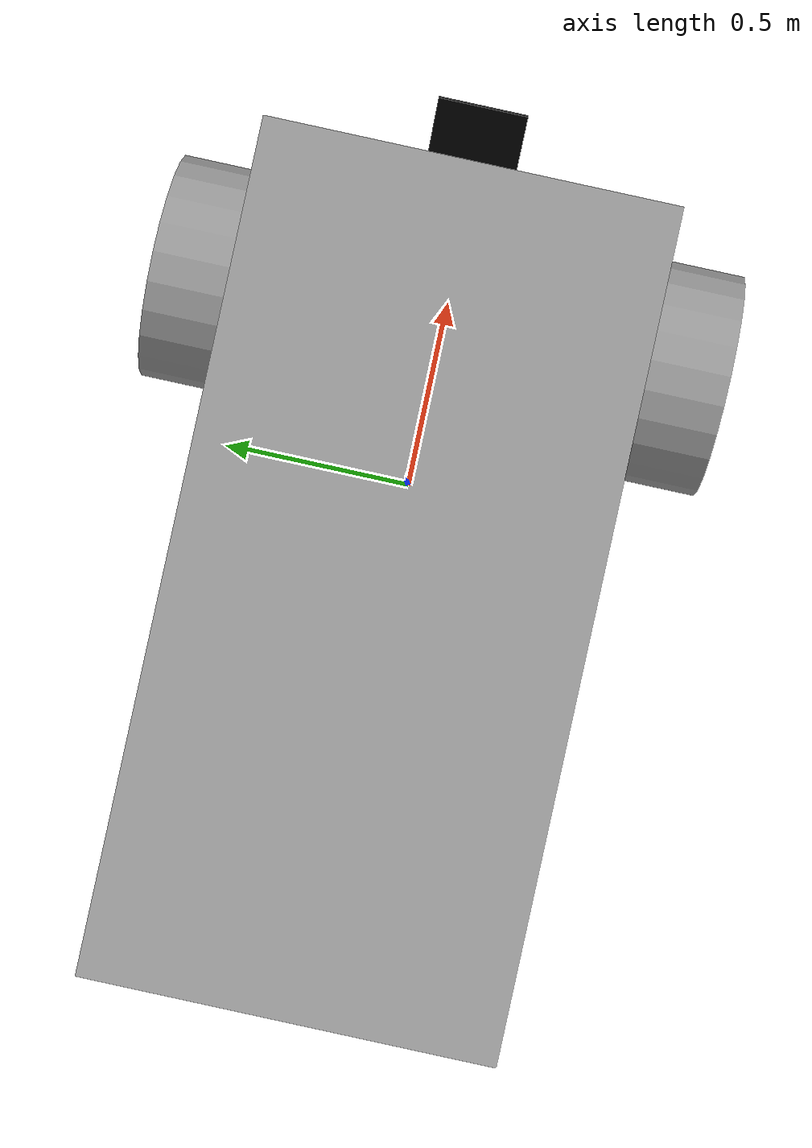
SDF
<?xml version='1.0'?>
<sdf version='1.6'>
  <model name='hummingbot'>
    <link name='main_box'>
      <inertial>
        <mass>2.04447</mass>
        <inertia>
          <ixx>0.340745</ixx>
          <ixy>0</ixy>
          <ixz>0</ixz>
          <iyy>0.882505</iyy>
          <iyz>0</iyz>
          <izz>0.882505</izz>
        </inertia>
        <pose frame=''>0 0 0 0 -0 0</pose>
      </inertial>
      <pose frame=''>-0.285955 -0.002958 0.4 0 -0 0</pose>
      <gravity>1</gravity>
      <self_collide>0</self_collide>
      <kinematic>0</kinematic>
      <enable_wind>0</enable_wind>
      <visual name='visual'>
        <pose frame=''>0 0 0 0 -0 0</pose>
        <geometry>
          <box>
            <size>2.04447 1 1</size>
          </box>
        </geometry>
        <material>
          <lighting>1</lighting>
          <script>
            <uri>file://media/materials/scripts/gazebo.material</uri>
            <name>Gazebo/Grey</name>
          </script>
          <shader type='vertex'>
            <normal_map>__default__</normal_map>
          </shader>
          <ambient>0.3 0.3 0.3 1</ambient>
          <diffuse>0.7 0.7 0.7 1</diffuse>
          <specular>0.01 0.01 0.01 1</specular>
          <emissive>0 0 0 1</emissive>
        </material>
        <transparency>0</transparency>
        <cast_shadows>1</cast_shadows>
      </visual>
      <collision name='collision'>
        <laser_retro>0</laser_retro>
        <max_contacts>10</max_contacts>
        <pose frame=''>0 0 0 0 -0 0</pose>
        <geometry>
          <box>
            <size>2.04447 1 1</size>
          </box>
        </geometry>
        <surface>
          <friction>
            <ode>
              <mu>1</mu>
              <mu2>1</mu2>
              <fdir1>0 0 0</fdir1>
              <slip1>0</slip1>
              <slip2>0</slip2>
            </ode>
            <torsional>
              <coefficient>1</coefficient>
              <patch_radius>0</patch_radius>
              <surface_radius>0</surface_radius>
              <use_patch_radius>1</use_patch_radius>
              <ode>
                <slip>0</slip>
              </ode>
            </torsional>
          </friction>
          <bounce>
            <restitution_coefficient>0</restitution_coefficient>
            <threshold>1e+06</threshold>
          </bounce>
          <contact>
            <collide_without_contact>0</collide_without_contact>
            <collide_without_contact_bitmask>1</collide_without_contact_bitmask>
            <collide_bitmask>1</collide_bitmask>
            <ode>
              <soft_cfm>0</soft_cfm>
              <soft_erp>0.2</soft_erp>
              <kp>1e+13</kp>
              <kd>1</kd>
              <max_vel>0.01</max_vel>
              <min_depth>0</min_depth>
            </ode>
            <bullet>
              <split_impulse>1</split_impulse>
              <split_impulse_penetration_threshold>-0.01</split_impulse_penetration_threshold>
              <soft_cfm>0</soft_cfm>
              <soft_erp>0.2</soft_erp>
              <kp>1e+13</kp>
              <kd>1</kd>
            </bullet>
          </contact>
        </surface>
      </collision>
    </link>
    <link name='ball_wheel'>
      <inertial>
        <mass>1</mass>
        <inertia>
          <ixx>0.1</ixx>
          <ixy>0</ixy>
          <ixz>0</ixz>
          <iyy>0.1</iyy>
          <iyz>0</iyz>
          <izz>0.1</izz>
        </inertia>
        <pose frame=''>0 0 0 0 -0 0</pose>
      </inertial>
      <pose frame=''>-1.10819 -0.002958 -0.234093 0 -0 0</pose>
      <gravity>1</gravity>
      <self_collide>0</self_collide>
      <kinematic>0</kinematic>
      <enable_wind>0</enable_wind>
      <visual name='visual'>
        <pose frame=''>0 0 0 0 -0 0</pose>
        <geometry>
          <sphere>
            <radius>0.2</radius>
          </sphere>
        </geometry>
        <material>
          <lighting>1</lighting>
          <script>
            <uri>file://media/materials/scripts/gazebo.material</uri>
            <name>Gazebo/Grey</name>
          </script>
          <shader type='vertex'>
            <normal_map>__default__</normal_map>
          </shader>
          <ambient>0.3 0.3 0.3 1</ambient>
          <diffuse>0.7 0.7 0.7 1</diffuse>
          <specular>0.01 0.01 0.01 1</specular>
          <emissive>0 0 0 1</emissive>
        </material>
        <transparency>0</transparency>
        <cast_shadows>1</cast_shadows>
      </visual>
      <collision name='collision'>
        <laser_retro>0</laser_retro>
        <max_contacts>10</max_contacts>
        <pose frame=''>0 0 0 0 -0 0</pose>
        <geometry>
          <sphere>
            <radius>0.2</radius>
          </sphere>
        </geometry>
        <surface>
          <friction>
            <ode>
              <mu>1</mu>
              <mu2>1</mu2>
              <fdir1>0 0 0</fdir1>
              <slip1>0</slip1>
              <slip2>0</slip2>
            </ode>
            <torsional>
              <coefficient>1</coefficient>
              <patch_radius>0</patch_radius>
              <surface_radius>0</surface_radius>
              <use_patch_radius>1</use_patch_radius>
              <ode>
                <slip>0</slip>
              </ode>
            </torsional>
          </friction>
          <bounce>
            <restitution_coefficient>0</restitution_coefficient>
            <threshold>1e+06</threshold>
          </bounce>
          <contact>
            <collide_without_contact>0</collide_without_contact>
            <collide_without_contact_bitmask>1</collide_without_contact_bitmask>
            <collide_bitmask>1</collide_bitmask>
            <ode>
              <soft_cfm>0</soft_cfm>
              <soft_erp>0.2</soft_erp>
              <kp>1e+13</kp>
              <kd>1</kd>
              <max_vel>0.01</max_vel>
              <min_depth>0</min_depth>
            </ode>
            <bullet>
              <split_impulse>1</split_impulse>
              <split_impulse_penetration_threshold>-0.01</split_impulse_penetration_threshold>
              <soft_cfm>0</soft_cfm>
              <soft_erp>0.2</soft_erp>
              <kp>1e+13</kp>
              <kd>1</kd>
            </bullet>
          </contact>
        </surface>
      </collision>
    </link>
    <link name='camera_link'>
      <pose frame=''>0.75 0 0.9 0 -0 0</pose>
      <inertial>
        <mass>0.03</mass>
        <inertia>
          <ixx>0.0001105</ixx>
          <iyy>0.00014425</iyy>
          <izz>0.00025425</izz>
          <ixy>0</ixy>
          <ixz>0</ixz>
          <iyz>0</iyz>
        </inertia>
        <pose frame=''>0 0 0 0 -0 0</pose>
      </inertial>
      <sensor name='camera' type='camera'>
        <camera name='__default__'>
          <horizontal_fov>2.79253</horizontal_fov>
          <image>
            <width>1280</width>
            <height>720</height>
          </image>
          <clip>
            <near>0.01</near>
            <far>1</far>
          </clip>
        </camera>
        <always_on>1</always_on>
        <update_rate>10</update_rate>
        <visualize>1</visualize>
      </sensor>
      <self_collide>0</self_collide>
      <enable_wind>0</enable_wind>
      <kinematic>0</kinematic>
      <gravity>1</gravity>
      <visual name='visual'>
        <geometry>
          <box>
            <size>0.24 0.21 0.01</size>
          </box>
        </geometry>
        <material>
          <shader type='pixel'>
            <normal_map>__default__</normal_map>
          </shader>
          <script>
            <name>ModelPreview_7::camera_link::visual_MATERIAL_</name>
            <uri>__default__</uri>
          </script>
          <ambient>0 0 0 1</ambient>
          <diffuse>0 0 0 1</diffuse>
          <specular>0 0 0 1</specular>
          <emissive>0 0 0 1</emissive>
        </material>
        <pose frame=''>0 0 0 0 -0.55 0</pose>
        <transparency>0</transparency>
        <cast_shadows>1</cast_shadows>
      </visual>
      <collision name='collision'>
        <laser_retro>0</laser_retro>
        <max_contacts>10</max_contacts>
        <pose frame=''>0 0 0 0 -0.55 0</pose>
        <geometry>
          <box>
            <size>0.24 0.21 0.01</size>
          </box>
        </geometry>
        <surface>
          <friction>
            <ode>
              <mu>1</mu>
              <mu2>1</mu2>
              <fdir1>0 0 0</fdir1>
              <slip1>0</slip1>
              <slip2>0</slip2>
            </ode>
            <torsional>
              <coefficient>1</coefficient>
              <patch_radius>0</patch_radius>
              <surface_radius>0</surface_radius>
              <use_patch_radius>1</use_patch_radius>
              <ode>
                <slip>0</slip>
              </ode>
            </torsional>
          </friction>
          <bounce>
            <restitution_coefficient>0</restitution_coefficient>
            <threshold>1e+06</threshold>
          </bounce>
          <contact>
            <collide_without_contact>0</collide_without_contact>
            <collide_without_contact_bitmask>1</collide_without_contact_bitmask>
            <collide_bitmask>1</collide_bitmask>
            <ode>
              <soft_cfm>0</soft_cfm>
              <soft_erp>0.2</soft_erp>
              <kp>1e+13</kp>
              <kd>1</kd>
              <max_vel>0.01</max_vel>
              <min_depth>0</min_depth>
            </ode>
            <bullet>
              <split_impulse>1</split_impulse>
              <split_impulse_penetration_threshold>-0.01</split_impulse_penetration_threshold>
              <soft_cfm>0</soft_cfm>
              <soft_erp>0.2</soft_erp>
              <kp>1e+13</kp>
              <kd>1</kd>
            </bullet>
          </contact>
        </surface>
      </collision>
    </link>
    <link name='left_wheel'>
      <inertial>
        <mass>1</mass>
        <inertia>
          <ixx>0.145833</ixx>
          <ixy>0</ixy>
          <ixz>0</ixz>
          <iyy>0.145833</iyy>
          <iyz>0</iyz>
          <izz>0.125</izz>
        </inertia>
        <pose frame=''>0 0 0 0 -0 0</pose>
      </inertial>
      <pose frame=''>0.436279 0.637071 0 1.5707 -0 0</pose>
      <gravity>1</gravity>
      <self_collide>0</self_collide>
      <kinematic>0</kinematic>
      <enable_wind>0</enable_wind>
      <visual name='visual'>
        <pose frame=''>0 0 0 0 -0 0</pose>
        <geometry>
          <cylinder>
            <radius>0.3</radius>
            <length>0.25</length>
          </cylinder>
        </geometry>
        <material>
          <lighting>1</lighting>
          <script>
            <uri>file://media/materials/scripts/gazebo.material</uri>
            <name>Gazebo/Grey</name>
          </script>
          <shader type='vertex'>
            <normal_map>__default__</normal_map>
          </shader>
          <ambient>0.3 0.3 0.3 1</ambient>
          <diffuse>0.7 0.7 0.7 1</diffuse>
          <specular>0.01 0.01 0.01 1</specular>
          <emissive>0 0 0 1</emissive>
        </material>
        <transparency>0</transparency>
        <cast_shadows>1</cast_shadows>
      </visual>
      <collision name='collision'>
        <laser_retro>0</laser_retro>
        <max_contacts>10</max_contacts>
        <pose frame=''>0 0 0 0 -0 0</pose>
        <geometry>
          <cylinder>
            <radius>0.3</radius>
            <length>0.25</length>
          </cylinder>
        </geometry>
        <surface>
          <friction>
            <ode>
              <mu>1</mu>
              <mu2>1</mu2>
              <fdir1>0 0 0</fdir1>
              <slip1>0</slip1>
              <slip2>0</slip2>
            </ode>
            <torsional>
              <coefficient>1</coefficient>
              <patch_radius>0</patch_radius>
              <surface_radius>0</surface_radius>
              <use_patch_radius>1</use_patch_radius>
              <ode>
                <slip>0</slip>
              </ode>
            </torsional>
          </friction>
          <bounce>
            <restitution_coefficient>0</restitution_coefficient>
            <threshold>1e+06</threshold>
          </bounce>
          <contact>
            <collide_without_contact>0</collide_without_contact>
            <collide_without_contact_bitmask>1</collide_without_contact_bitmask>
            <collide_bitmask>1</collide_bitmask>
            <ode>
              <soft_cfm>0</soft_cfm>
              <soft_erp>0.2</soft_erp>
              <kp>1e+13</kp>
              <kd>1</kd>
              <max_vel>0.01</max_vel>
              <min_depth>0</min_depth>
            </ode>
            <bullet>
              <split_impulse>1</split_impulse>
              <split_impulse_penetration_threshold>-0.01</split_impulse_penetration_threshold>
              <soft_cfm>0</soft_cfm>
              <soft_erp>0.2</soft_erp>
              <kp>1e+13</kp>
              <kd>1</kd>
            </bullet>
          </contact>
        </surface>
      </collision>
    </link>
    <link name='right_wheel'>
      <inertial>
        <mass>1</mass>
        <inertia>
          <ixx>0.145833</ixx>
          <ixy>0</ixy>
          <ixz>0</ixz>
          <iyy>0.145833</iyy>
          <iyz>0</iyz>
          <izz>0.125</izz>
        </inertia>
        <pose frame=''>0 0 0 0 -0 0</pose>
      </inertial>
      <pose frame=''>0.436279 -0.627988 0 1.5707 -0 0</pose>
      <gravity>1</gravity>
      <self_collide>0</self_collide>
      <kinematic>0</kinematic>
      <enable_wind>0</enable_wind>
      <visual name='visual'>
        <pose frame=''>0 0 0 0 -0 0</pose>
        <geometry>
          <cylinder>
            <radius>0.3</radius>
            <length>0.25</length>
          </cylinder>
        </geometry>
        <material>
          <lighting>1</lighting>
          <script>
            <uri>file://media/materials/scripts/gazebo.material</uri>
            <name>Gazebo/Grey</name>
          </script>
          <shader type='vertex'>
            <normal_map>__default__</normal_map>
          </shader>
          <ambient>0.3 0.3 0.3 1</ambient>
          <diffuse>0.7 0.7 0.7 1</diffuse>
          <specular>0.01 0.01 0.01 1</specular>
          <emissive>0 0 0 1</emissive>
        </material>
        <transparency>0</transparency>
        <cast_shadows>1</cast_shadows>
      </visual>
      <collision name='collision'>
        <laser_retro>0</laser_retro>
        <max_contacts>10</max_contacts>
        <pose frame=''>0 0 0 0 -0 0</pose>
        <geometry>
          <cylinder>
            <radius>0.3</radius>
            <length>0.25</length>
          </cylinder>
        </geometry>
        <surface>
          <friction>
            <ode>
              <mu>1</mu>
              <mu2>1</mu2>
              <fdir1>0 0 0</fdir1>
              <slip1>0</slip1>
              <slip2>0</slip2>
            </ode>
            <torsional>
              <coefficient>1</coefficient>
              <patch_radius>0</patch_radius>
              <surface_radius>0</surface_radius>
              <use_patch_radius>1</use_patch_radius>
              <ode>
                <slip>0</slip>
              </ode>
            </torsional>
          </friction>
          <bounce>
            <restitution_coefficient>0</restitution_coefficient>
            <threshold>1e+06</threshold>
          </bounce>
          <contact>
            <collide_without_contact>0</collide_without_contact>
            <collide_without_contact_bitmask>1</collide_without_contact_bitmask>
            <collide_bitmask>1</collide_bitmask>
            <ode>
              <soft_cfm>0</soft_cfm>
              <soft_erp>0.2</soft_erp>
              <kp>1e+13</kp>
              <kd>1</kd>
              <max_vel>0.01</max_vel>
              <min_depth>0</min_depth>
            </ode>
            <bullet>
              <split_impulse>1</split_impulse>
              <split_impulse_penetration_threshold>-0.01</split_impulse_penetration_threshold>
              <soft_cfm>0</soft_cfm>
              <soft_erp>0.2</soft_erp>
              <kp>1e+13</kp>
              <kd>1</kd>
            </bullet>
          </contact>
        </surface>
      </collision>
    </link>
    <joint name='ball_link' type='ball'>
      <parent>main_box</parent>
      <child>ball_wheel</child>
      <pose frame=''>0 0 0 0 -0 0</pose>
      <physics>
        <ode>
          <limit>
            <cfm>0</cfm>
            <erp>0.2</erp>
          </limit>
          <suspension>
            <cfm>0</cfm>
            <erp>0.2</erp>
          </suspension>
        </ode>
      </physics>
    </joint>
    <joint name='camera_joint' type='fixed'>
      <parent>main_box</parent>
      <child>camera_link</child>
      <pose frame=''>0 0 0 0 -0 0</pose>
      <physics>
        <ode>
          <limit>
            <cfm>0</cfm>
            <erp>0.2</erp>
          </limit>
          <suspension>
            <cfm>0</cfm>
            <erp>0.2</erp>
          </suspension>
        </ode>
      </physics>
    </joint>
    <joint name='left_wheel_hinge' type='revolute'>
      <parent>main_box</parent>
      <child>left_wheel</child>
      <pose frame=''>0 0 0 0 -0 0</pose>
      <axis>
        <xyz>0 0 1</xyz>
        <use_parent_model_frame>0</use_parent_model_frame>
        <limit>
          <lower>-1.79769e+308</lower>
          <upper>1.79769e+308</upper>
          <effort>-1</effort>
          <velocity>-1</velocity>
        </limit>
        <dynamics>
          <spring_reference>0</spring_reference>
          <spring_stiffness>0</spring_stiffness>
          <damping>0</damping>
          <friction>0</friction>
        </dynamics>
      </axis>
      <physics>
        <ode>
          <limit>
            <cfm>0</cfm>
            <erp>0.2</erp>
          </limit>
          <suspension>
            <cfm>0</cfm>
            <erp>0.2</erp>
          </suspension>
        </ode>
      </physics>
    </joint>
    <joint name='right_wheel_hinge' type='revolute'>
      <parent>main_box</parent>
      <child>right_wheel</child>
      <pose frame=''>0 0 0 0 -0 0</pose>
      <axis>
        <xyz>0 0 1</xyz>
        <use_parent_model_frame>0</use_parent_model_frame>
        <limit>
          <lower>-1.79769e+308</lower>
          <upper>1.79769e+308</upper>
          <effort>-1</effort>
          <velocity>-1</velocity>
        </limit>
        <dynamics>
          <spring_reference>0</spring_reference>
          <spring_stiffness>0</spring_stiffness>
          <damping>0</damping>
          <friction>0</friction>
        </dynamics>
      </axis>
      <physics>
        <ode>
          <limit>
            <cfm>0</cfm>
            <erp>0.2</erp>
          </limit>
          <suspension>
            <cfm>0</cfm>
            <erp>0.2</erp>
          </suspension>
        </ode>
      </physics>
    </joint>
    <static>0</static>
    <allow_auto_disable>1</allow_auto_disable>
   </model>
 </sdf>
